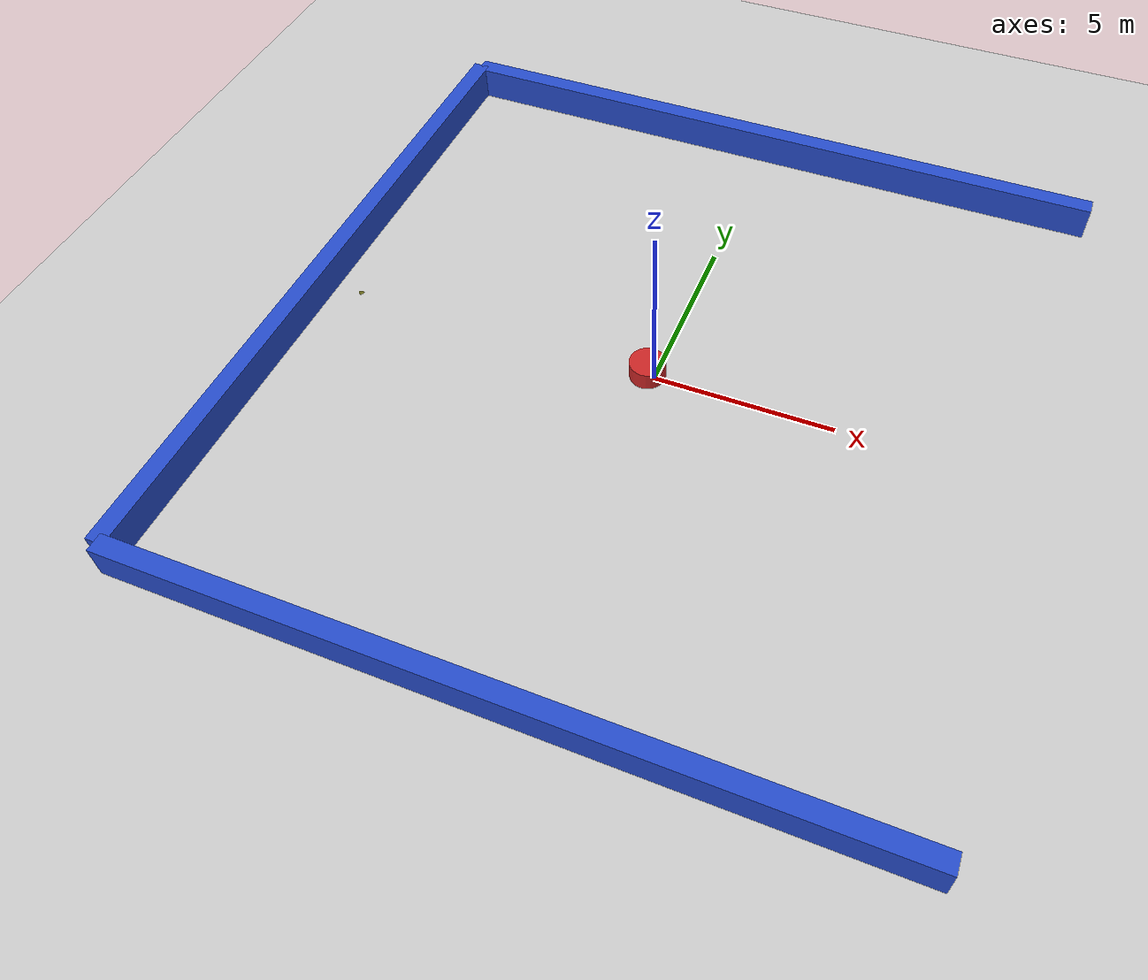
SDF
<sdf version="1.6">
   <world name="default">
      <include>
         <uri>model://ground_plane</uri>
      </include>
      <include>
         <uri>model://sun</uri>
      </include>

    <model name="easylibobs_180">
      <static>1</static>
      <pose frame="">-0.225000 0.075000 0.000000 0.000000 0.000000 0.000000</pose>
      <link name="link">
        <inertial>
          <mass>1</mass>
          <inertia>
            <ixx>0.145833</ixx>
            <ixy>0</ixy>
            <ixz>0</ixz>
            <iyy>0.145833</iyy>
            <iyz>0</iyz>
            <izz>0.125</izz>
          </inertia>
        </inertial>
        <collision name="collision">
           <geometry>
            <cylinder>
                <radius>0.5000</radius>
                 <length> 1 </length>
            </cylinder>
          </geometry>
           <surface>
            <contact>
              <ode />
            </contact>
            <bounce />
            <friction>
              <torsional>
                <ode />
              </torsional>
              <ode />
            </friction>
          </surface>
        </collision>
        <visual name="visual">
           <geometry>
            <cylinder>
                <radius>0.5000</radius>
                 <length> 1 </length>
            </cylinder>
          </geometry>
          <material>
            <script>
              <name>Gazebo/Red</name>
              <uri>file://media/materials/scripts/gazebo.material</uri>
            </script>
          </material>
        </visual>
        <self_collide>0</self_collide>
        <kinematic>0</kinematic>
        <gravity>1</gravity>
      </link>
      <plugin name="easylibobs_180" filename="easylibobs_180.so" />
    </model>

    <model name="easylibobs_40">
      <static>1</static>
      <pose frame="">-0.225000 0.075000 0.000000 0.000000 0.000000 0.000000</pose>
      <link name="link">
        <inertial>
          <mass>1</mass>
          <inertia>
            <ixx>0.145833</ixx>
            <ixy>0</ixy>
            <ixz>0</ixz>
            <iyy>0.145833</iyy>
            <iyz>0</iyz>
            <izz>0.125</izz>
          </inertia>
        </inertial>
        <collision name="collision">
           <geometry>
            <cylinder>
                <radius>0.5000</radius>
                 <length> 1 </length>
            </cylinder>
          </geometry>
           <surface>
            <contact>
              <ode />
            </contact>
            <bounce />
            <friction>
              <torsional>
                <ode />
              </torsional>
              <ode />
            </friction>
          </surface>
        </collision>
        <visual name="visual">
           <geometry>
            <cylinder>
                <radius>0.5000</radius>
                 <length> 1 </length>
            </cylinder>
          </geometry>
          <material>
            <script>
              <name>Gazebo/Red</name>
              <uri>file://media/materials/scripts/gazebo.material</uri>
            </script>
          </material>
        </visual>
        <self_collide>0</self_collide>
        <kinematic>0</kinematic>
        <gravity>1</gravity>
      </link>
      <plugin name="easylibobs_40" filename="easylibobs_40.so" />
    </model>

    <model name="easylibobs_177">
      <static>1</static>
      <pose frame="">-0.225000 0.075000 0.000000 0.000000 0.000000 0.000000</pose>
      <link name="link">
        <inertial>
          <mass>1</mass>
          <inertia>
            <ixx>0.145833</ixx>
            <ixy>0</ixy>
            <ixz>0</ixz>
            <iyy>0.145833</iyy>
            <iyz>0</iyz>
            <izz>0.125</izz>
          </inertia>
        </inertial>
        <collision name="collision">
           <geometry>
            <cylinder>
                <radius>0.5000</radius>
                 <length> 1 </length>
            </cylinder>
          </geometry>
           <surface>
            <contact>
              <ode />
            </contact>
            <bounce />
            <friction>
              <torsional>
                <ode />
              </torsional>
              <ode />
            </friction>
          </surface>
        </collision>
        <visual name="visual">
           <geometry>
            <cylinder>
                <radius>0.5000</radius>
                 <length> 1 </length>
            </cylinder>
          </geometry>
          <material>
            <script>
              <name>Gazebo/Red</name>
              <uri>file://media/materials/scripts/gazebo.material</uri>
            </script>
          </material>
        </visual>
        <self_collide>0</self_collide>
        <kinematic>0</kinematic>
        <gravity>1</gravity>
      </link>
      <plugin name="easylibobs_177" filename="easylibobs_177.so" />
    </model>

    <model name="easylibobs_83">
      <static>1</static>
      <pose frame="">-0.225000 0.075000 0.000000 0.000000 0.000000 0.000000</pose>
      <link name="link">
        <inertial>
          <mass>1</mass>
          <inertia>
            <ixx>0.145833</ixx>
            <ixy>0</ixy>
            <ixz>0</ixz>
            <iyy>0.145833</iyy>
            <iyz>0</iyz>
            <izz>0.125</izz>
          </inertia>
        </inertial>
        <collision name="collision">
           <geometry>
            <cylinder>
                <radius>0.5000</radius>
                 <length> 1 </length>
            </cylinder>
          </geometry>
           <surface>
            <contact>
              <ode />
            </contact>
            <bounce />
            <friction>
              <torsional>
                <ode />
              </torsional>
              <ode />
            </friction>
          </surface>
        </collision>
        <visual name="visual">
           <geometry>
            <cylinder>
                <radius>0.5000</radius>
                 <length> 1 </length>
            </cylinder>
          </geometry>
          <material>
            <script>
              <name>Gazebo/Red</name>
              <uri>file://media/materials/scripts/gazebo.material</uri>
            </script>
          </material>
        </visual>
        <self_collide>0</self_collide>
        <kinematic>0</kinematic>
        <gravity>1</gravity>
      </link>
      <plugin name="easylibobs_83" filename="easylibobs_83.so" />
    </model>

    <model name="easylibobs_18">
      <static>1</static>
      <pose frame="">-0.225000 0.075000 0.000000 0.000000 0.000000 0.000000</pose>
      <link name="link">
        <inertial>
          <mass>1</mass>
          <inertia>
            <ixx>0.145833</ixx>
            <ixy>0</ixy>
            <ixz>0</ixz>
            <iyy>0.145833</iyy>
            <iyz>0</iyz>
            <izz>0.125</izz>
          </inertia>
        </inertial>
        <collision name="collision">
           <geometry>
            <cylinder>
                <radius>0.5000</radius>
                 <length> 1 </length>
            </cylinder>
          </geometry>
           <surface>
            <contact>
              <ode />
            </contact>
            <bounce />
            <friction>
              <torsional>
                <ode />
              </torsional>
              <ode />
            </friction>
          </surface>
        </collision>
        <visual name="visual">
           <geometry>
            <cylinder>
                <radius>0.5000</radius>
                 <length> 1 </length>
            </cylinder>
          </geometry>
          <material>
            <script>
              <name>Gazebo/Red</name>
              <uri>file://media/materials/scripts/gazebo.material</uri>
            </script>
          </material>
        </visual>
        <self_collide>0</self_collide>
        <kinematic>0</kinematic>
        <gravity>1</gravity>
      </link>
      <plugin name="easylibobs_18" filename="easylibobs_18.so" />
    </model>

    <model name="easylibobs_149">
      <static>1</static>
      <pose frame="">-0.225000 0.075000 0.000000 0.000000 0.000000 0.000000</pose>
      <link name="link">
        <inertial>
          <mass>1</mass>
          <inertia>
            <ixx>0.145833</ixx>
            <ixy>0</ixy>
            <ixz>0</ixz>
            <iyy>0.145833</iyy>
            <iyz>0</iyz>
            <izz>0.125</izz>
          </inertia>
        </inertial>
        <collision name="collision">
           <geometry>
            <cylinder>
                <radius>0.5000</radius>
                 <length> 1 </length>
            </cylinder>
          </geometry>
           <surface>
            <contact>
              <ode />
            </contact>
            <bounce />
            <friction>
              <torsional>
                <ode />
              </torsional>
              <ode />
            </friction>
          </surface>
        </collision>
        <visual name="visual">
           <geometry>
            <cylinder>
                <radius>0.5000</radius>
                 <length> 1 </length>
            </cylinder>
          </geometry>
          <material>
            <script>
              <name>Gazebo/Red</name>
              <uri>file://media/materials/scripts/gazebo.material</uri>
            </script>
          </material>
        </visual>
        <self_collide>0</self_collide>
        <kinematic>0</kinematic>
        <gravity>1</gravity>
      </link>
      <plugin name="easylibobs_149" filename="easylibobs_149.so" />
    </model>

    <model name="easylibobs_150">
      <static>1</static>
      <pose frame="">-0.225000 0.075000 0.000000 0.000000 0.000000 0.000000</pose>
      <link name="link">
        <inertial>
          <mass>1</mass>
          <inertia>
            <ixx>0.145833</ixx>
            <ixy>0</ixy>
            <ixz>0</ixz>
            <iyy>0.145833</iyy>
            <iyz>0</iyz>
            <izz>0.125</izz>
          </inertia>
        </inertial>
        <collision name="collision">
           <geometry>
            <cylinder>
                <radius>0.5000</radius>
                 <length> 1 </length>
            </cylinder>
          </geometry>
           <surface>
            <contact>
              <ode />
            </contact>
            <bounce />
            <friction>
              <torsional>
                <ode />
              </torsional>
              <ode />
            </friction>
          </surface>
        </collision>
        <visual name="visual">
           <geometry>
            <cylinder>
                <radius>0.5000</radius>
                 <length> 1 </length>
            </cylinder>
          </geometry>
          <material>
            <script>
              <name>Gazebo/Red</name>
              <uri>file://media/materials/scripts/gazebo.material</uri>
            </script>
          </material>
        </visual>
        <self_collide>0</self_collide>
        <kinematic>0</kinematic>
        <gravity>1</gravity>
      </link>
      <plugin name="easylibobs_150" filename="easylibobs_150.so" />
    </model>

    <model name="easylibobs_119">
      <static>1</static>
      <pose frame="">-0.225000 0.075000 0.000000 0.000000 0.000000 0.000000</pose>
      <link name="link">
        <inertial>
          <mass>1</mass>
          <inertia>
            <ixx>0.145833</ixx>
            <ixy>0</ixy>
            <ixz>0</ixz>
            <iyy>0.145833</iyy>
            <iyz>0</iyz>
            <izz>0.125</izz>
          </inertia>
        </inertial>
        <collision name="collision">
           <geometry>
            <cylinder>
                <radius>0.5000</radius>
                 <length> 1 </length>
            </cylinder>
          </geometry>
           <surface>
            <contact>
              <ode />
            </contact>
            <bounce />
            <friction>
              <torsional>
                <ode />
              </torsional>
              <ode />
            </friction>
          </surface>
        </collision>
        <visual name="visual">
           <geometry>
            <cylinder>
                <radius>0.5000</radius>
                 <length> 1 </length>
            </cylinder>
          </geometry>
          <material>
            <script>
              <name>Gazebo/Red</name>
              <uri>file://media/materials/scripts/gazebo.material</uri>
            </script>
          </material>
        </visual>
        <self_collide>0</self_collide>
        <kinematic>0</kinematic>
        <gravity>1</gravity>
      </link>
      <plugin name="easylibobs_119" filename="easylibobs_119.so" />
    </model>

      <model name="back_wall">
      <static>1</static>\   <pose frame="">-10 0 .5 0 0 0</pose>        <link name="box_link">

	<collision name="collision">
            <geometry>
              <box>
                <size>.5 20 1</size>
              </box>
            </geometry>
           <surface>
            <contact>
              <ode />
            </contact>
            <bounce />
            <friction>
              <torsional>
                <ode />
              </torsional>
              <ode />
            </friction>
          </surface>
        </collision>

          <visual name="visual">
            <geometry>
              <box>
                <size>.5 20 1</size>
              </box>
            </geometry>
          <material>
                 <script>
                     <name>Gazebo/Blue</name>
                         <uri>file://media/materials/scripts/gazebo.material</uri>
                         </script>
                     </material>
          </visual>
        </link>
      </model>
      <model name="top_wall">
      <static>1</static>
       <pose frame="">0 10 .5 0 0 0</pose>        <link name="box_link">

	<collision name="collision">
           <geometry>
              <box>
                <size>20 .5 1</size>
              </box>
            </geometry>
           <surface>
            <contact>
              <ode />
            </contact>
            <bounce />
            <friction>
              <torsional>
                <ode />
              </torsional>
              <ode />
            </friction>
          </surface>
        </collision>
          <visual name="visual">
            <geometry>
              <box>
                <size>20 .5 1</size>
              </box>
            </geometry>
          <material>
                 <script>
                     <name>Gazebo/Blue</name>
                         <uri>file://media/materials/scripts/gazebo.material</uri>
                         </script>
                     </material>
          </visual>
        </link>
      </model>
      <model name="bottom_wall">
      <static>1</static>
       <pose frame="">0 -10 .5 0 0 0</pose>        <link name="box_link">
	<collision name="collision">
            <geometry>
              <box>
                <size>20 .5 1</size>
              </box>
            </geometry>
           <surface>
            <contact>
              <ode />
            </contact>
            <bounce />
            <friction>
              <torsional>
                <ode />
              </torsional>
              <ode />
            </friction>
          </surface>
        </collision>
          <visual name="visual">
            <geometry>
              <box>
                <size>20 .5 1</size>
              </box>
            </geometry>
          <material>
                 <script>
                     <name>Gazebo/Blue</name>
                         <uri>file://media/materials/scripts/gazebo.material</uri>
                         </script>
                     </material>
          </visual>
        </link>
      </model>
   <model name="goal"><static>1</static><pose frame="">-9.00000 0.000000 0.000000 0.000000 0.000000 0.000000</pose><link name="link"><inertial><mass>1</mass><inertia><ixx>0.145833</ixx><ixy>0</ixy><ixz>0</ixz><iyy>0.145833</iyy><iyz>0</iyz><izz>0.125</izz></inertia></inertial><collision name="collision"><geometry><cylinder><radius>0.075000</radius><length>1</length></cylinder></geometry><max_contacts>10</max_contacts><surface><contact><ode /></contact><bounce /><friction><torsional><ode /></torsional><ode /></friction></surface></collision><visual name="visual"><geometry><cylinder><radius>0.075000</radius><length>0.001</length></cylinder></geometry><material><ambient>0 1 0 1</ambient><diffuse>0.4 0.4 0.1 1</diffuse></material><material><script><name>Gazebo/Grey</name><uri>file://media/materials/scripts/gazebo.material</uri></script></material></visual><self_collide>0</self_collide><kinematic>0</kinematic><gravity>0</gravity></link></model></world>
</sdf>
